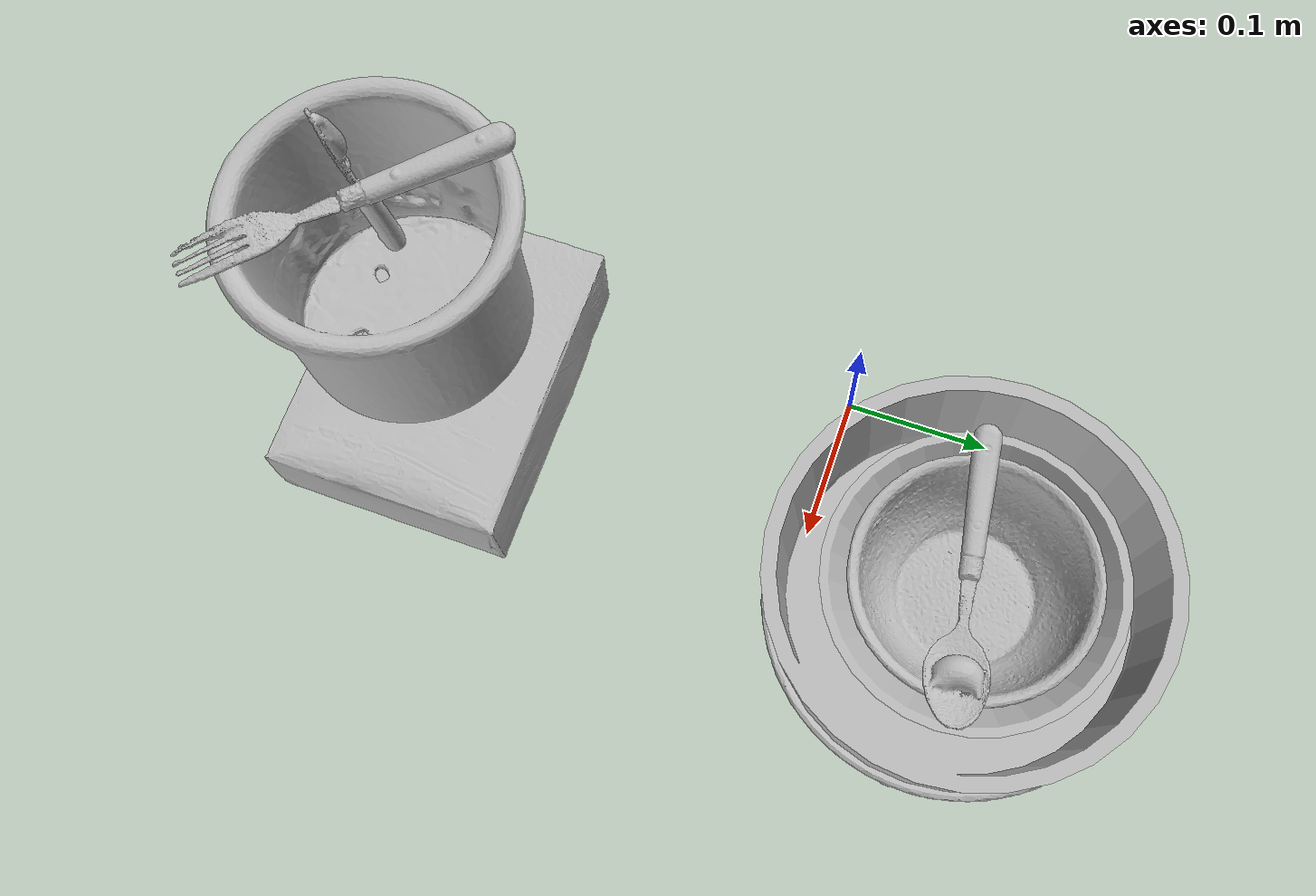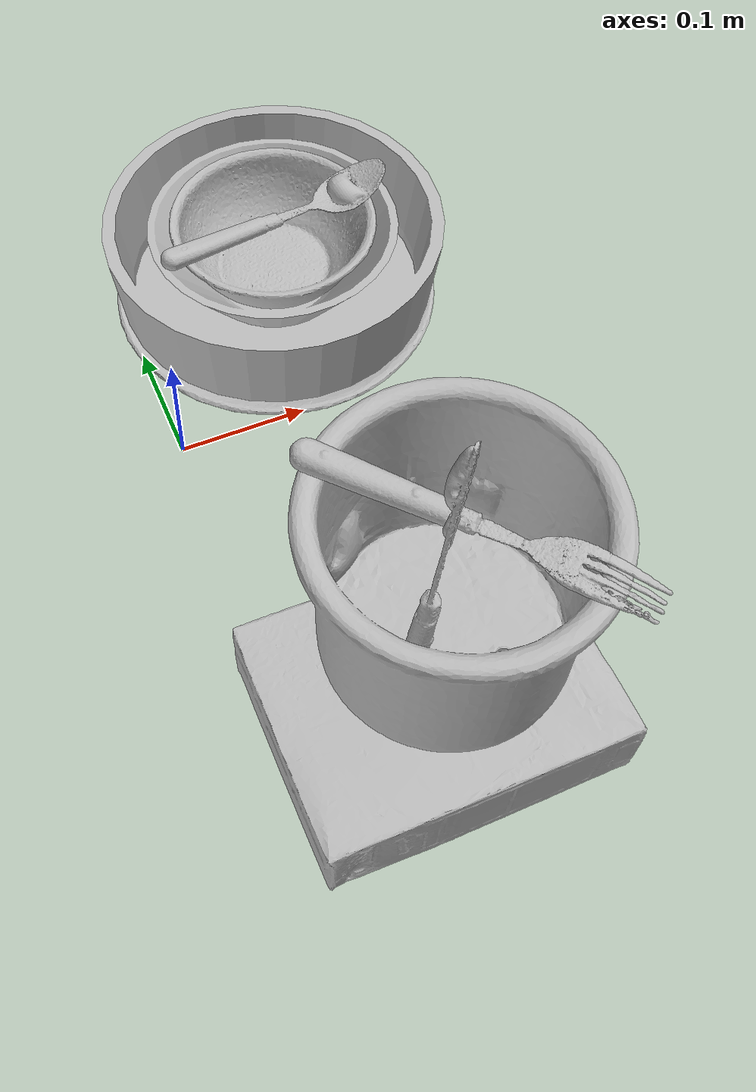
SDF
<?xml version="1.0" ?>
<sdf version="1.4">

  <world name="default">

    <light name="light1" type="point">

      <pose>0 0 1 0 0 0</pose>

      <diffuse>3 3 3 1</diffuse>

      <specular>3 3 3 1</specular>

    </light>

    <light name="light2" type="point">

      <pose>0 0.5 2 0 0 0</pose>

      <diffuse>1 1 1 1</diffuse>

      <specular>1 1 1 1</specular>

    </light>

    <light name="light3" type="point">

      <pose>0 0.5 2 0 0 0</pose>

      <diffuse>3 3 3 1</diffuse>

      <specular>3 3 3 1</specular>

    </light>

    <scene>

      <ambient>0.7 0.7 0.7</ambient>

    </scene>

    <model name="plate1">

      <link name="link_plate1">

        <collision name="default">

          <geometry>

            <mesh>

              <uri>model://plate/collision_meshes/collision.obj</uri>

              <scale>1.0 1.0 1.0</scale>

            </mesh>

          </geometry>

          <surface>

            <friction>

              <ode>

                <mu>0.5</mu>

                <mu2>0.5</mu2>

              </ode>

            </friction>

          </surface>

        </collision>

        <visual name="default">

          <geometry>

            <mesh>

              <uri>model://plate/visual_meshes/visual.dae</uri>

              <scale>1.0 1.0 1.0</scale>

            </mesh>

          </geometry>

        </visual>

        <inertial>

          <mass>0.14927330613136292</mass>

          <pose>-0.0006044599576853216 0.00027825793949887156 -0.0010561984963715076 0.0022187657602494516 -0.0032254905015569333 0.45261542380491104</pose>

          <inertia>

            <ixx>0.0006983033</ixx>

            <iyy>0.0006916243</iyy>

            <izz>0.0013657772</izz>

            <ixy>0</ixy>

            <ixz>0</ixz>

            <iyz>0</iyz>

          </inertia>

        </inertial>

      </link>

      <pose>0.1199377253651619 0.1100025400519371 0.013741481117904186 -3.7579340273258606e-05 -0.00010873602268541974 3.450043190137543e-05</pose>

    </model>

    <model name="plate2">

      <link name="link_plate2">

        <collision name="default">

          <geometry>

            <mesh>

              <uri>model://pan_tefal/collision_meshes/collision.obj</uri>

              <scale>1.0 1.0 1.0</scale>

            </mesh>

          </geometry>

          <surface>

            <friction>

              <ode>

                <mu>0.5</mu>

                <mu2>0.5</mu2>

              </ode>

            </friction>

          </surface>

        </collision>

        <visual name="default">

          <geometry>

            <mesh>

              <uri>model://pan_tefal/visual_meshes/visual.dae</uri>

              <scale>1.0 1.0 1.0</scale>

            </mesh>

          </geometry>

        </visual>

        <inertial>

          <mass>1.1722657680511475</mass>

          <pose>-0.00018002268916461617 3.2786720112198964e-05 -0.008514933288097382 0.0008190189984333748 -0.0003301390782503885 -0.3318520141268409</pose>

          <inertia>

            <ixx>0.008092094</ixx>

            <iyy>0.008144264</iyy>

            <izz>0.014895983</izz>

            <ixy>0</ixy>

            <ixz>0</ixz>

            <iyz>0</iyz>

          </inertia>

        </inertial>

      </link>

      <pose>0.12002017349004745 0.1101224347949028 0.06391726434230804 0.0012295970125239643 -0.002576458276207291 0.0035314038986153273</pose>

    </model>

    <model name="bowl1">

      <link name="link_bowl1">

        <collision name="default">

          <geometry>

            <mesh>

              <uri>model://bowl_a/collision_meshes/collision.obj</uri>

              <scale>1.0 1.0 1.0</scale>

            </mesh>

          </geometry>

          <surface>

            <friction>

              <ode>

                <mu>0.5</mu>

                <mu2>0.5</mu2>

              </ode>

            </friction>

          </surface>

        </collision>

        <visual name="default">

          <geometry>

            <mesh>

              <uri>model://bowl_a/visual_meshes/visual.dae</uri>

              <scale>1.0 1.0 1.0</scale>

            </mesh>

          </geometry>

        </visual>

        <inertial>

          <mass>0.2988097667694092</mass>

          <pose>0.0002786743571050465 4.731365334009752e-05 -0.0013765293406322598 -0.0009805349169279892 -0.001093820822183951 -0.19123530183129564</pose>

          <inertia>

            <ixx>0.00085072505</ixx>

            <iyy>0.00085594796</iyy>

            <izz>0.0015130473</izz>

            <ixy>0</ixy>

            <ixz>0</ixz>

            <iyz>0</iyz>

          </inertia>

        </inertial>

      </link>

      <pose>0.12032865732908249 0.1123349592089653 0.0640825405716896 -0.002582728776239822 -0.004797391182682879 0.015081015670247116</pose>

    </model>

    <model name="bowl2">

      <link name="link_bowl2">

        <collision name="default">

          <geometry>

            <mesh>

              <uri>model://bowl/collision_meshes/collision.obj</uri>

              <scale>1.0 1.0 1.0</scale>

            </mesh>

          </geometry>

          <surface>

            <friction>

              <ode>

                <mu>0.5</mu>

                <mu2>0.5</mu2>

              </ode>

            </friction>

          </surface>

        </collision>

        <visual name="default">

          <geometry>

            <mesh>

              <uri>model://bowl/visual_meshes/visual.dae</uri>

              <scale>1.0 1.0 1.0</scale>

            </mesh>

          </geometry>

        </visual>

        <inertial>

          <mass>0.05087859928607941</mass>

          <pose>0.00020445352129172534 -0.001030206447467208 -0.0008042655535973608 -0.015764084400621287 0.014546790156403148 0.7140405806030785</pose>

          <inertia>

            <ixx>0.0001168722</ixx>

            <iyy>0.00011426082</iyy>

            <izz>0.0001966192</izz>

            <ixy>0</ixy>

            <ixz>0</ixz>

            <iyz>0</iyz>

          </inertia>

        </inertial>

      </link>

      <pose>0.12016446888446808 0.11236982047557831 0.07324157655239105 0.019873377757689725 -0.0021189364258733688 -0.00781902762821437</pose>

    </model>

    <model name="silverware1">

      <link name="link_silverware1">

        <collision name="default">

          <geometry>

            <mesh>

              <uri>model://spoon/collision_meshes/collision.obj</uri>

              <scale>1.0 1.0 1.0</scale>

            </mesh>

          </geometry>

          <surface>

            <friction>

              <ode>

                <mu>0.5</mu>

                <mu2>0.5</mu2>

              </ode>

            </friction>

          </surface>

        </collision>

        <visual name="default">

          <geometry>

            <mesh>

              <uri>model://spoon/visual_meshes/visual.dae</uri>

              <scale>1.0 1.0 1.0</scale>

            </mesh>

          </geometry>

        </visual>

        <inertial>

          <mass>0.031133336946368217</mass>

          <pose>-0.005526311229914427 -0.001603417214937508 -0.000727165665011853 0.03521724372111935 -0.03906583963771688 0.006150613707428126</pose>

          <inertia>

            <ixx>1.7316867e-06</ixx>

            <iyy>0.00011846133</iyy>

            <izz>0.00011931534</izz>

            <ixy>0</ixy>

            <ixz>0</ixz>

            <iyz>0</iyz>

          </inertia>

        </inertial>

      </link>

      <pose>0.12152591347694397 0.10916371643543243 0.10471730679273605 -0.06719569050493393 0.051192907228705245 0.15071960226727862</pose>

    </model>

    <model name="box1">

      <link name="link_box1">

        <collision name="default">

          <geometry>

            <mesh>

              <uri>model://cracker_box/collision_meshes/collision.obj</uri>

              <scale>1.0 1.0 1.0</scale>

            </mesh>

          </geometry>

          <surface>

            <friction>

              <ode>

                <mu>0.5</mu>

                <mu2>0.5</mu2>

              </ode>

            </friction>

          </surface>

        </collision>

        <visual name="default">

          <geometry>

            <mesh>

              <uri>model://cracker_box/visual_meshes/visual.dae</uri>

              <scale>1.0 1.0 1.0</scale>

            </mesh>

          </geometry>

        </visual>

        <inertial>

          <mass>2.900710344314575</mass>

          <pose>0.0009464158210903406 0.00025434247800149024 -0.0017029534792527556 -0.0003162075379034469 -0.011106488669169442 0.0025467947685016775</pose>

          <inertia>

            <ixx>0.007378111</ixx>

            <iyy>0.012182713</iyy>

            <izz>0.01738585</izz>

            <ixy>0</ixy>

            <ixz>0</ixz>

            <iyz>0</iyz>

          </inertia>

        </inertial>

      </link>

      <pose>0.07976910471916199 -0.27001938223838806 0.035531703382730484 3.1371773946691706 -0.016547748912893376 0.0002713409214198249</pose>

    </model>

    <model name="box2">

      <link name="link_box2">

        <collision name="default">

          <geometry>

            <mesh>

              <uri>model://rubiks_cube/collision_meshes/collision.obj</uri>

              <scale>1.0 1.0 1.0</scale>

            </mesh>

          </geometry>

          <surface>

            <friction>

              <ode>

                <mu>0.5</mu>

                <mu2>0.5</mu2>

              </ode>

            </friction>

          </surface>

        </collision>

        <visual name="default">

          <geometry>

            <mesh>

              <uri>model://rubiks_cube/visual_meshes/visual.dae</uri>

              <scale>1.0 1.0 1.0</scale>

            </mesh>

          </geometry>

        </visual>

        <inertial>

          <mass>0.28670012950897217</mass>

          <pose>2.6721039830590598e-05 5.2569666877388954e-05 -7.264316082000732e-06 -0.05467310906580907 -0.09814045067101686 -0.03445712671449578</pose>

          <inertia>

            <ixx>0.00015842107</ixx>

            <iyy>0.0001576823</iyy>

            <izz>0.00015973386</izz>

            <ixy>0</ixy>

            <ixz>0</ixz>

            <iyz>0</iyz>

          </inertia>

        </inertial>

      </link>

      <pose>0.07938183099031448 -0.2711113691329956 0.10060709714889526 0.022907533124180254 -0.03238043239789743 -0.03430021804401316</pose>

    </model>

    <model name="cup1">

      <link name="link_cup1">

        <collision name="default">

          <geometry>

            <mesh>

              <uri>model://g_cups/collision_meshes/collision.obj</uri>

              <scale>2.0 2.0 2.0</scale>

            </mesh>

          </geometry>

          <surface>

            <friction>

              <ode>

                <mu>0.5</mu>

                <mu2>0.5</mu2>

              </ode>

            </friction>

          </surface>

        </collision>

        <visual name="default">

          <geometry>

            <mesh>

              <uri>model://g_cups/visual_meshes/visual.dae</uri>

              <scale>2.0 2.0 2.0</scale>

            </mesh>

          </geometry>

        </visual>

        <inertial>

          <mass>0.7979594469070435</mass>

          <pose>-0.001589252962730825 -8.413367322646081e-05 -0.004265873227268457 -0.2138242542550812 -0.3141046905663657 0.3112069095441374</pose>

          <inertia>

            <ixx>0.0037255902</ixx>

            <iyy>0.003712916</iyy>

            <izz>0.0038590694</izz>

            <ixy>0</ixy>

            <ixz>0</ixz>

            <iyz>0</iyz>

          </inertia>

        </inertial>

      </link>

      <pose>0.07777637988328934 -0.2717445194721222 0.19299174845218658 0.017774926781955414 -0.021009075342185476 -0.012676449208974814</pose>

    </model>

    <model name="silverware2">

      <link name="link_silverware2">

        <collision name="default">

          <geometry>

            <mesh>

              <uri>model://fork/collision_meshes/collision.obj</uri>

              <scale>1.0 1.0 1.0</scale>

            </mesh>

          </geometry>

          <surface>

            <friction>

              <ode>

                <mu>0.5</mu>

                <mu2>0.5</mu2>

              </ode>

            </friction>

          </surface>

        </collision>

        <visual name="default">

          <geometry>

            <mesh>

              <uri>model://fork/visual_meshes/visual.dae</uri>

              <scale>1.0 1.0 1.0</scale>

            </mesh>

          </geometry>

        </visual>

        <inertial>

          <mass>0.026295984163880348</mass>

          <pose>-0.02957003563642502 0.0004658822435885668 0.0003218861238565296 -0.013551585765180826 -0.010977835012843383 0.014453895551669751</pose>

          <inertia>

            <ixx>9.2182285e-07</ixx>

            <iyy>6.865125e-05</iyy>

            <izz>6.9063564e-05</izz>

            <ixy>0</ixy>

            <ixz>0</ixz>

            <iyz>0</iyz>

          </inertia>

        </inertial>

      </link>

      <pose>0.07653529942035675 -0.2824685275554657 0.2725025415420532 -3.1389849743833977 0.015660483903622242 -0.8313447299548095</pose>

    </model>

    <model name="silverware3">

      <link name="link_silverware3">

        <collision name="default">

          <geometry>

            <mesh>

              <uri>model://knife/collision_meshes/collision.obj</uri>

              <scale>1.0 1.0 1.0</scale>

            </mesh>

          </geometry>

          <surface>

            <friction>

              <ode>

                <mu>0.5</mu>

                <mu2>0.5</mu2>

              </ode>

            </friction>

          </surface>

        </collision>

        <visual name="default">

          <geometry>

            <mesh>

              <uri>model://knife/visual_meshes/visual.dae</uri>

              <scale>1.0 1.0 1.0</scale>

            </mesh>

          </geometry>

        </visual>

        <inertial>

          <mass>0.018686598166823387</mass>

          <pose>-0.023785265162587166 0.001527512213215232 5.06201722600963e-05 0.0730586728597059 0.01724841756758314 -0.007409823953988089</pose>

          <inertia>

            <ixx>5.3040145e-07</ixx>

            <iyy>7.1790884e-05</iyy>

            <izz>7.1961695e-05</izz>

            <ixy>0</ixy>

            <ixz>0</ixz>

            <iyz>0</iyz>

          </inertia>

        </inertial>

      </link>

      <pose>0.05375480651855469 -0.29201045632362366 0.2403615564107895 1.8529115043603732 -1.3851917150031292 0.49727972926811637</pose>

    </model>

  </world>

</sdf>
